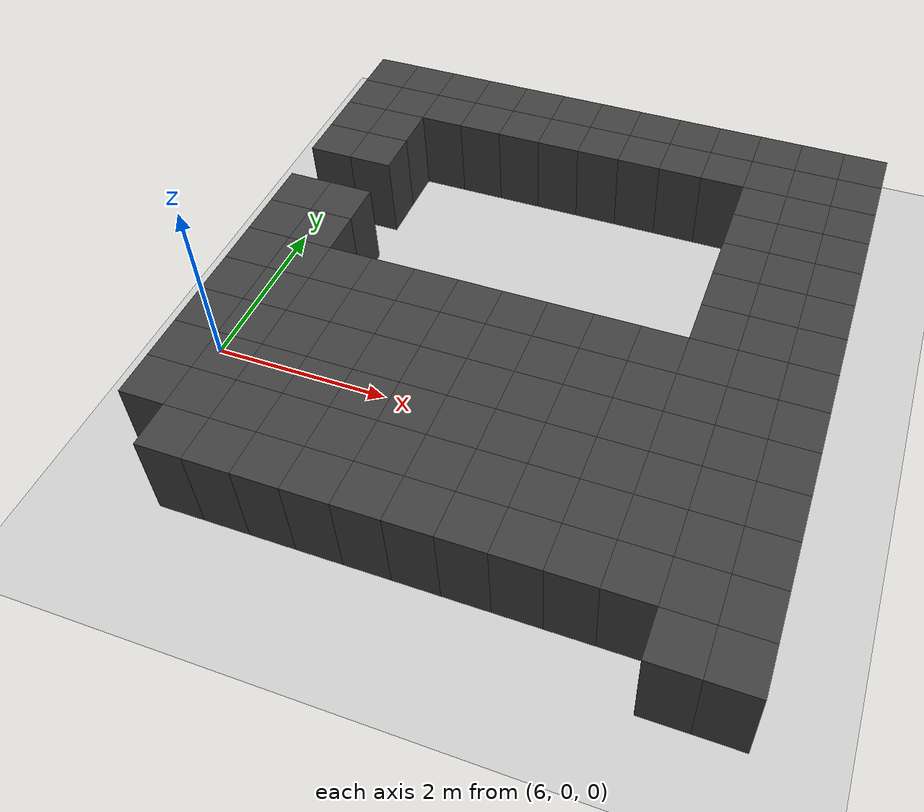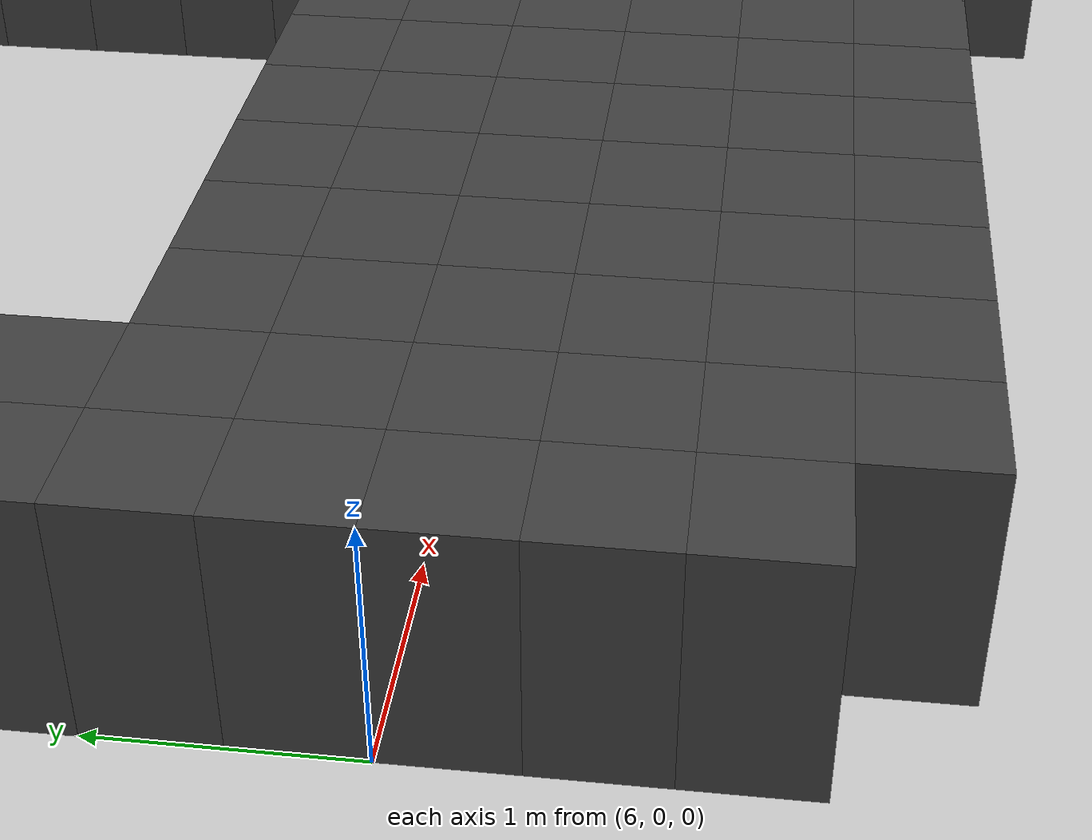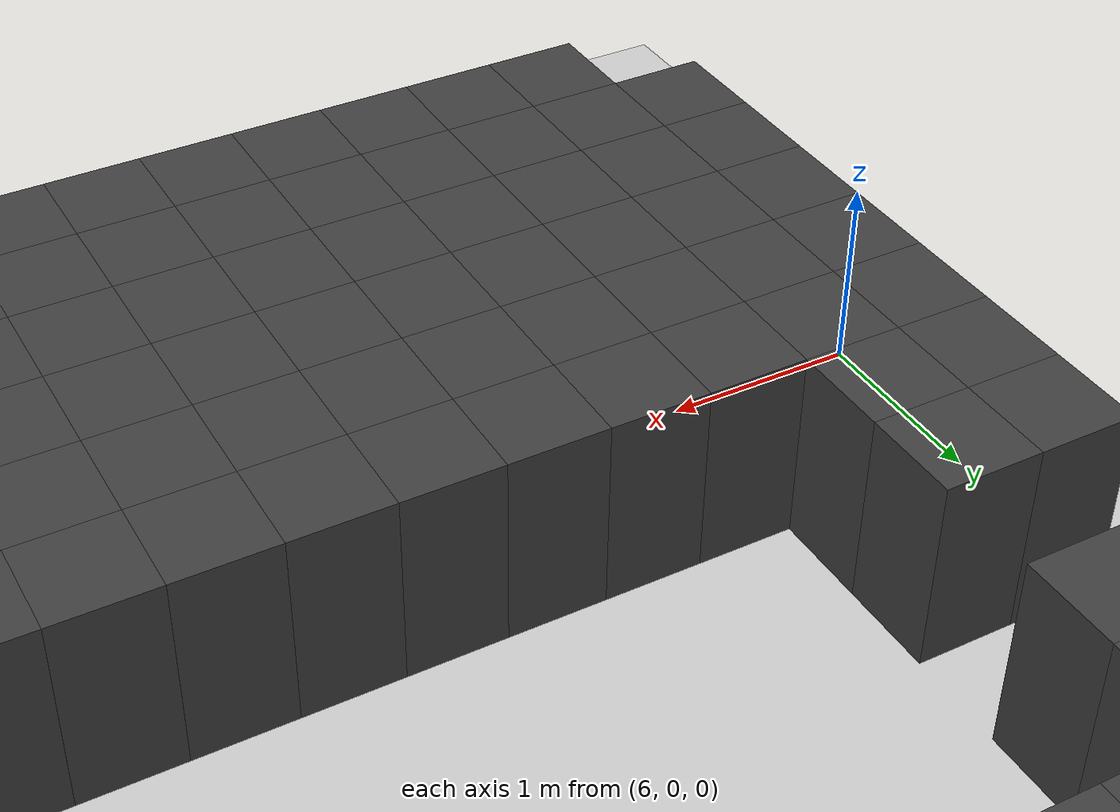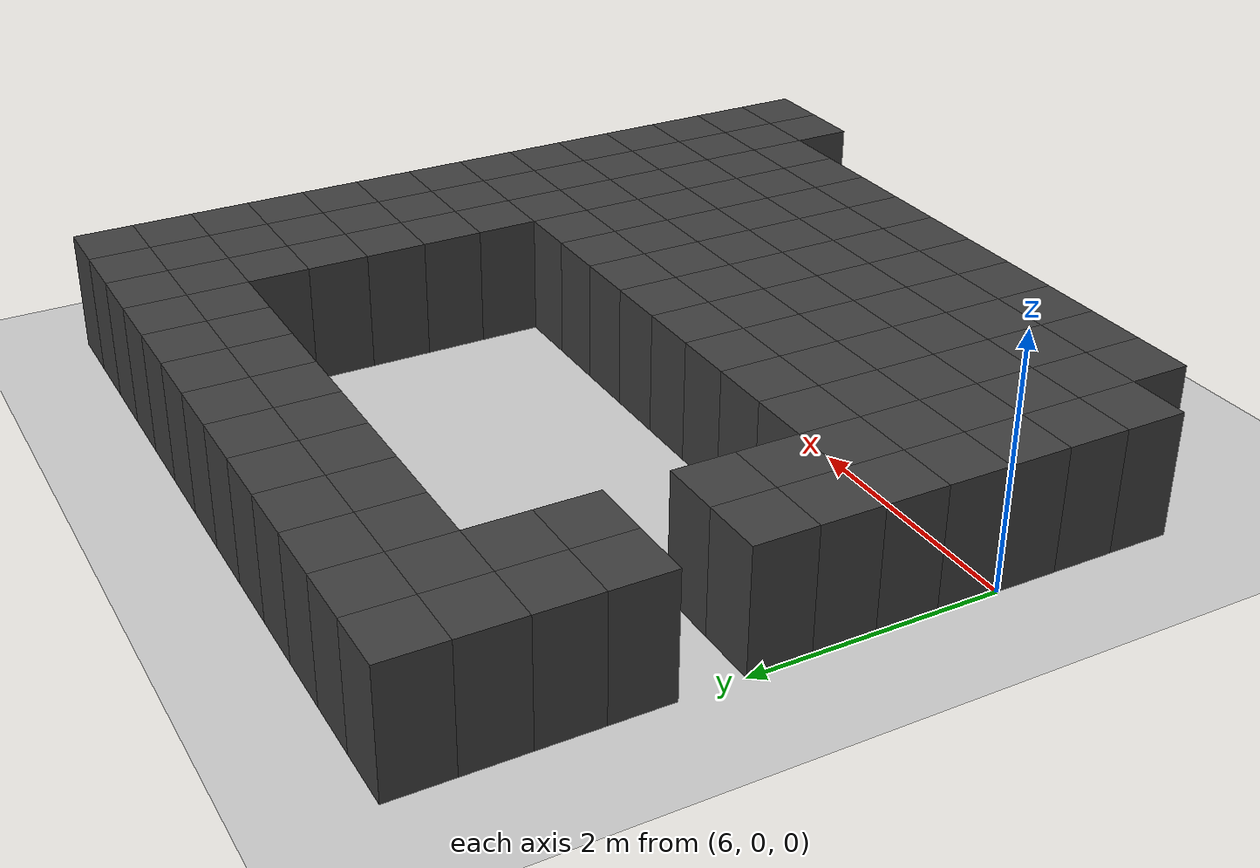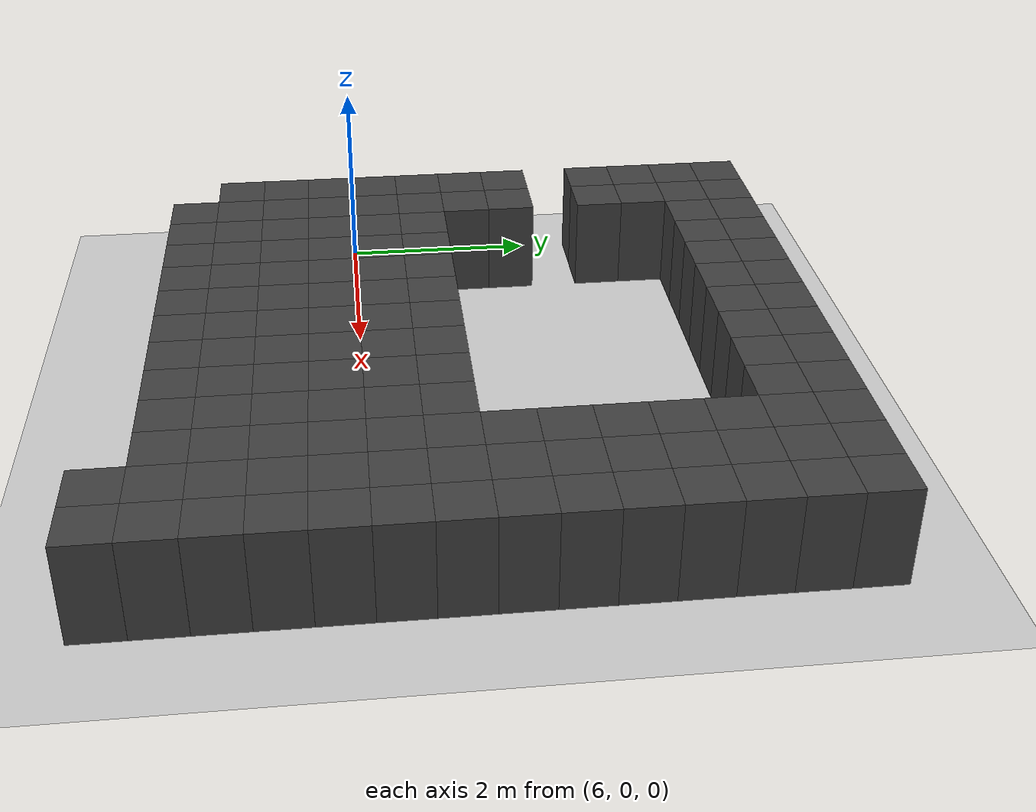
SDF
<sdf version="1.7">
 <world name="map_11515">
  <model name="ground_plane">
   <static>true</static>
   <link name="link">
    <collision name="collision">
     <geometry><plane><normal>0 0 1</normal><size>200 200</size></plane></geometry>
    </collision>
    <visual name="visual">
     <geometry><plane><normal>0 0 1</normal><size>200 200</size></plane></geometry>
     <material><ambient>0.8 0.8 0.8 1</ambient><diffuse>0.8 0.8 0.8 1</diffuse></material>
    </visual>
   </link>
  </model>
  <model name="maze_environment">
   <static>true</static>
   <link name="wall_710">
    <pose>6.250 4.250 0.500 0 0 0</pose>
    <collision name="col"><geometry><box><size>0.5 0.5 1.0</size></box></geometry></collision>
    <visual name="vis">
     <geometry><box><size>0.5 0.5 1.0</size></box></geometry>
     <material><ambient>0.15 0.15 0.15 1</ambient><diffuse>0.25 0.25 0.25 1</diffuse></material>
    </visual>
   </link>
   <link name="wall_711">
    <pose>6.750 4.250 0.500 0 0 0</pose>
    <collision name="col"><geometry><box><size>0.5 0.5 1.0</size></box></geometry></collision>
    <visual name="vis">
     <geometry><box><size>0.5 0.5 1.0</size></box></geometry>
     <material><ambient>0.15 0.15 0.15 1</ambient><diffuse>0.25 0.25 0.25 1</diffuse></material>
    </visual>
   </link>
   <link name="wall_712">
    <pose>7.250 4.250 0.500 0 0 0</pose>
    <collision name="col"><geometry><box><size>0.5 0.5 1.0</size></box></geometry></collision>
    <visual name="vis">
     <geometry><box><size>0.5 0.5 1.0</size></box></geometry>
     <material><ambient>0.15 0.15 0.15 1</ambient><diffuse>0.25 0.25 0.25 1</diffuse></material>
    </visual>
   </link>
   <link name="wall_713">
    <pose>7.750 4.250 0.500 0 0 0</pose>
    <collision name="col"><geometry><box><size>0.5 0.5 1.0</size></box></geometry></collision>
    <visual name="vis">
     <geometry><box><size>0.5 0.5 1.0</size></box></geometry>
     <material><ambient>0.15 0.15 0.15 1</ambient><diffuse>0.25 0.25 0.25 1</diffuse></material>
    </visual>
   </link>
   <link name="wall_714">
    <pose>8.250 4.250 0.500 0 0 0</pose>
    <collision name="col"><geometry><box><size>0.5 0.5 1.0</size></box></geometry></collision>
    <visual name="vis">
     <geometry><box><size>0.5 0.5 1.0</size></box></geometry>
     <material><ambient>0.15 0.15 0.15 1</ambient><diffuse>0.25 0.25 0.25 1</diffuse></material>
    </visual>
   </link>
   <link name="wall_715">
    <pose>8.750 4.250 0.500 0 0 0</pose>
    <collision name="col"><geometry><box><size>0.5 0.5 1.0</size></box></geometry></collision>
    <visual name="vis">
     <geometry><box><size>0.5 0.5 1.0</size></box></geometry>
     <material><ambient>0.15 0.15 0.15 1</ambient><diffuse>0.25 0.25 0.25 1</diffuse></material>
    </visual>
   </link>
   <link name="wall_716">
    <pose>9.250 4.250 0.500 0 0 0</pose>
    <collision name="col"><geometry><box><size>0.5 0.5 1.0</size></box></geometry></collision>
    <visual name="vis">
     <geometry><box><size>0.5 0.5 1.0</size></box></geometry>
     <material><ambient>0.15 0.15 0.15 1</ambient><diffuse>0.25 0.25 0.25 1</diffuse></material>
    </visual>
   </link>
   <link name="wall_717">
    <pose>9.750 4.250 0.500 0 0 0</pose>
    <collision name="col"><geometry><box><size>0.5 0.5 1.0</size></box></geometry></collision>
    <visual name="vis">
     <geometry><box><size>0.5 0.5 1.0</size></box></geometry>
     <material><ambient>0.15 0.15 0.15 1</ambient><diffuse>0.25 0.25 0.25 1</diffuse></material>
    </visual>
   </link>
   <link name="wall_718">
    <pose>10.250 4.250 0.500 0 0 0</pose>
    <collision name="col"><geometry><box><size>0.5 0.5 1.0</size></box></geometry></collision>
    <visual name="vis">
     <geometry><box><size>0.5 0.5 1.0</size></box></geometry>
     <material><ambient>0.15 0.15 0.15 1</ambient><diffuse>0.25 0.25 0.25 1</diffuse></material>
    </visual>
   </link>
   <link name="wall_719">
    <pose>10.750 4.250 0.500 0 0 0</pose>
    <collision name="col"><geometry><box><size>0.5 0.5 1.0</size></box></geometry></collision>
    <visual name="vis">
     <geometry><box><size>0.5 0.5 1.0</size></box></geometry>
     <material><ambient>0.15 0.15 0.15 1</ambient><diffuse>0.25 0.25 0.25 1</diffuse></material>
    </visual>
   </link>
   <link name="wall_720">
    <pose>11.250 4.250 0.500 0 0 0</pose>
    <collision name="col"><geometry><box><size>0.5 0.5 1.0</size></box></geometry></collision>
    <visual name="vis">
     <geometry><box><size>0.5 0.5 1.0</size></box></geometry>
     <material><ambient>0.15 0.15 0.15 1</ambient><diffuse>0.25 0.25 0.25 1</diffuse></material>
    </visual>
   </link>
   <link name="wall_721">
    <pose>11.750 4.250 0.500 0 0 0</pose>
    <collision name="col"><geometry><box><size>0.5 0.5 1.0</size></box></geometry></collision>
    <visual name="vis">
     <geometry><box><size>0.5 0.5 1.0</size></box></geometry>
     <material><ambient>0.15 0.15 0.15 1</ambient><diffuse>0.25 0.25 0.25 1</diffuse></material>
    </visual>
   </link>
   <link name="wall_722">
    <pose>12.250 4.250 0.500 0 0 0</pose>
    <collision name="col"><geometry><box><size>0.5 0.5 1.0</size></box></geometry></collision>
    <visual name="vis">
     <geometry><box><size>0.5 0.5 1.0</size></box></geometry>
     <material><ambient>0.15 0.15 0.15 1</ambient><diffuse>0.25 0.25 0.25 1</diffuse></material>
    </visual>
   </link>
   <link name="wall_752">
    <pose>6.250 3.750 0.500 0 0 0</pose>
    <collision name="col"><geometry><box><size>0.5 0.5 1.0</size></box></geometry></collision>
    <visual name="vis">
     <geometry><box><size>0.5 0.5 1.0</size></box></geometry>
     <material><ambient>0.15 0.15 0.15 1</ambient><diffuse>0.25 0.25 0.25 1</diffuse></material>
    </visual>
   </link>
   <link name="wall_753">
    <pose>6.750 3.750 0.500 0 0 0</pose>
    <collision name="col"><geometry><box><size>0.5 0.5 1.0</size></box></geometry></collision>
    <visual name="vis">
     <geometry><box><size>0.5 0.5 1.0</size></box></geometry>
     <material><ambient>0.15 0.15 0.15 1</ambient><diffuse>0.25 0.25 0.25 1</diffuse></material>
    </visual>
   </link>
   <link name="wall_754">
    <pose>7.250 3.750 0.500 0 0 0</pose>
    <collision name="col"><geometry><box><size>0.5 0.5 1.0</size></box></geometry></collision>
    <visual name="vis">
     <geometry><box><size>0.5 0.5 1.0</size></box></geometry>
     <material><ambient>0.15 0.15 0.15 1</ambient><diffuse>0.25 0.25 0.25 1</diffuse></material>
    </visual>
   </link>
   <link name="wall_755">
    <pose>7.750 3.750 0.500 0 0 0</pose>
    <collision name="col"><geometry><box><size>0.5 0.5 1.0</size></box></geometry></collision>
    <visual name="vis">
     <geometry><box><size>0.5 0.5 1.0</size></box></geometry>
     <material><ambient>0.15 0.15 0.15 1</ambient><diffuse>0.25 0.25 0.25 1</diffuse></material>
    </visual>
   </link>
   <link name="wall_756">
    <pose>8.250 3.750 0.500 0 0 0</pose>
    <collision name="col"><geometry><box><size>0.5 0.5 1.0</size></box></geometry></collision>
    <visual name="vis">
     <geometry><box><size>0.5 0.5 1.0</size></box></geometry>
     <material><ambient>0.15 0.15 0.15 1</ambient><diffuse>0.25 0.25 0.25 1</diffuse></material>
    </visual>
   </link>
   <link name="wall_757">
    <pose>8.750 3.750 0.500 0 0 0</pose>
    <collision name="col"><geometry><box><size>0.5 0.5 1.0</size></box></geometry></collision>
    <visual name="vis">
     <geometry><box><size>0.5 0.5 1.0</size></box></geometry>
     <material><ambient>0.15 0.15 0.15 1</ambient><diffuse>0.25 0.25 0.25 1</diffuse></material>
    </visual>
   </link>
   <link name="wall_758">
    <pose>9.250 3.750 0.500 0 0 0</pose>
    <collision name="col"><geometry><box><size>0.5 0.5 1.0</size></box></geometry></collision>
    <visual name="vis">
     <geometry><box><size>0.5 0.5 1.0</size></box></geometry>
     <material><ambient>0.15 0.15 0.15 1</ambient><diffuse>0.25 0.25 0.25 1</diffuse></material>
    </visual>
   </link>
   <link name="wall_759">
    <pose>9.750 3.750 0.500 0 0 0</pose>
    <collision name="col"><geometry><box><size>0.5 0.5 1.0</size></box></geometry></collision>
    <visual name="vis">
     <geometry><box><size>0.5 0.5 1.0</size></box></geometry>
     <material><ambient>0.15 0.15 0.15 1</ambient><diffuse>0.25 0.25 0.25 1</diffuse></material>
    </visual>
   </link>
   <link name="wall_760">
    <pose>10.250 3.750 0.500 0 0 0</pose>
    <collision name="col"><geometry><box><size>0.5 0.5 1.0</size></box></geometry></collision>
    <visual name="vis">
     <geometry><box><size>0.5 0.5 1.0</size></box></geometry>
     <material><ambient>0.15 0.15 0.15 1</ambient><diffuse>0.25 0.25 0.25 1</diffuse></material>
    </visual>
   </link>
   <link name="wall_761">
    <pose>10.750 3.750 0.500 0 0 0</pose>
    <collision name="col"><geometry><box><size>0.5 0.5 1.0</size></box></geometry></collision>
    <visual name="vis">
     <geometry><box><size>0.5 0.5 1.0</size></box></geometry>
     <material><ambient>0.15 0.15 0.15 1</ambient><diffuse>0.25 0.25 0.25 1</diffuse></material>
    </visual>
   </link>
   <link name="wall_762">
    <pose>11.250 3.750 0.500 0 0 0</pose>
    <collision name="col"><geometry><box><size>0.5 0.5 1.0</size></box></geometry></collision>
    <visual name="vis">
     <geometry><box><size>0.5 0.5 1.0</size></box></geometry>
     <material><ambient>0.15 0.15 0.15 1</ambient><diffuse>0.25 0.25 0.25 1</diffuse></material>
    </visual>
   </link>
   <link name="wall_763">
    <pose>11.750 3.750 0.500 0 0 0</pose>
    <collision name="col"><geometry><box><size>0.5 0.5 1.0</size></box></geometry></collision>
    <visual name="vis">
     <geometry><box><size>0.5 0.5 1.0</size></box></geometry>
     <material><ambient>0.15 0.15 0.15 1</ambient><diffuse>0.25 0.25 0.25 1</diffuse></material>
    </visual>
   </link>
   <link name="wall_764">
    <pose>12.250 3.750 0.500 0 0 0</pose>
    <collision name="col"><geometry><box><size>0.5 0.5 1.0</size></box></geometry></collision>
    <visual name="vis">
     <geometry><box><size>0.5 0.5 1.0</size></box></geometry>
     <material><ambient>0.15 0.15 0.15 1</ambient><diffuse>0.25 0.25 0.25 1</diffuse></material>
    </visual>
   </link>
   <link name="wall_794">
    <pose>6.250 3.250 0.500 0 0 0</pose>
    <collision name="col"><geometry><box><size>0.5 0.5 1.0</size></box></geometry></collision>
    <visual name="vis">
     <geometry><box><size>0.5 0.5 1.0</size></box></geometry>
     <material><ambient>0.15 0.15 0.15 1</ambient><diffuse>0.25 0.25 0.25 1</diffuse></material>
    </visual>
   </link>
   <link name="wall_795">
    <pose>6.750 3.250 0.500 0 0 0</pose>
    <collision name="col"><geometry><box><size>0.5 0.5 1.0</size></box></geometry></collision>
    <visual name="vis">
     <geometry><box><size>0.5 0.5 1.0</size></box></geometry>
     <material><ambient>0.15 0.15 0.15 1</ambient><diffuse>0.25 0.25 0.25 1</diffuse></material>
    </visual>
   </link>
   <link name="wall_796">
    <pose>11.250 3.250 0.500 0 0 0</pose>
    <collision name="col"><geometry><box><size>0.5 0.5 1.0</size></box></geometry></collision>
    <visual name="vis">
     <geometry><box><size>0.5 0.5 1.0</size></box></geometry>
     <material><ambient>0.15 0.15 0.15 1</ambient><diffuse>0.25 0.25 0.25 1</diffuse></material>
    </visual>
   </link>
   <link name="wall_797">
    <pose>11.750 3.250 0.500 0 0 0</pose>
    <collision name="col"><geometry><box><size>0.5 0.5 1.0</size></box></geometry></collision>
    <visual name="vis">
     <geometry><box><size>0.5 0.5 1.0</size></box></geometry>
     <material><ambient>0.15 0.15 0.15 1</ambient><diffuse>0.25 0.25 0.25 1</diffuse></material>
    </visual>
   </link>
   <link name="wall_798">
    <pose>12.250 3.250 0.500 0 0 0</pose>
    <collision name="col"><geometry><box><size>0.5 0.5 1.0</size></box></geometry></collision>
    <visual name="vis">
     <geometry><box><size>0.5 0.5 1.0</size></box></geometry>
     <material><ambient>0.15 0.15 0.15 1</ambient><diffuse>0.25 0.25 0.25 1</diffuse></material>
    </visual>
   </link>
   <link name="wall_830">
    <pose>6.250 2.750 0.500 0 0 0</pose>
    <collision name="col"><geometry><box><size>0.5 0.5 1.0</size></box></geometry></collision>
    <visual name="vis">
     <geometry><box><size>0.5 0.5 1.0</size></box></geometry>
     <material><ambient>0.15 0.15 0.15 1</ambient><diffuse>0.25 0.25 0.25 1</diffuse></material>
    </visual>
   </link>
   <link name="wall_831">
    <pose>6.750 2.750 0.500 0 0 0</pose>
    <collision name="col"><geometry><box><size>0.5 0.5 1.0</size></box></geometry></collision>
    <visual name="vis">
     <geometry><box><size>0.5 0.5 1.0</size></box></geometry>
     <material><ambient>0.15 0.15 0.15 1</ambient><diffuse>0.25 0.25 0.25 1</diffuse></material>
    </visual>
   </link>
   <link name="wall_832">
    <pose>11.250 2.750 0.500 0 0 0</pose>
    <collision name="col"><geometry><box><size>0.5 0.5 1.0</size></box></geometry></collision>
    <visual name="vis">
     <geometry><box><size>0.5 0.5 1.0</size></box></geometry>
     <material><ambient>0.15 0.15 0.15 1</ambient><diffuse>0.25 0.25 0.25 1</diffuse></material>
    </visual>
   </link>
   <link name="wall_833">
    <pose>11.750 2.750 0.500 0 0 0</pose>
    <collision name="col"><geometry><box><size>0.5 0.5 1.0</size></box></geometry></collision>
    <visual name="vis">
     <geometry><box><size>0.5 0.5 1.0</size></box></geometry>
     <material><ambient>0.15 0.15 0.15 1</ambient><diffuse>0.25 0.25 0.25 1</diffuse></material>
    </visual>
   </link>
   <link name="wall_834">
    <pose>12.250 2.750 0.500 0 0 0</pose>
    <collision name="col"><geometry><box><size>0.5 0.5 1.0</size></box></geometry></collision>
    <visual name="vis">
     <geometry><box><size>0.5 0.5 1.0</size></box></geometry>
     <material><ambient>0.15 0.15 0.15 1</ambient><diffuse>0.25 0.25 0.25 1</diffuse></material>
    </visual>
   </link>
   <link name="wall_858">
    <pose>11.250 2.250 0.500 0 0 0</pose>
    <collision name="col"><geometry><box><size>0.5 0.5 1.0</size></box></geometry></collision>
    <visual name="vis">
     <geometry><box><size>0.5 0.5 1.0</size></box></geometry>
     <material><ambient>0.15 0.15 0.15 1</ambient><diffuse>0.25 0.25 0.25 1</diffuse></material>
    </visual>
   </link>
   <link name="wall_859">
    <pose>11.750 2.250 0.500 0 0 0</pose>
    <collision name="col"><geometry><box><size>0.5 0.5 1.0</size></box></geometry></collision>
    <visual name="vis">
     <geometry><box><size>0.5 0.5 1.0</size></box></geometry>
     <material><ambient>0.15 0.15 0.15 1</ambient><diffuse>0.25 0.25 0.25 1</diffuse></material>
    </visual>
   </link>
   <link name="wall_860">
    <pose>12.250 2.250 0.500 0 0 0</pose>
    <collision name="col"><geometry><box><size>0.5 0.5 1.0</size></box></geometry></collision>
    <visual name="vis">
     <geometry><box><size>0.5 0.5 1.0</size></box></geometry>
     <material><ambient>0.15 0.15 0.15 1</ambient><diffuse>0.25 0.25 0.25 1</diffuse></material>
    </visual>
   </link>
   <link name="wall_892">
    <pose>6.250 1.750 0.500 0 0 0</pose>
    <collision name="col"><geometry><box><size>0.5 0.5 1.0</size></box></geometry></collision>
    <visual name="vis">
     <geometry><box><size>0.5 0.5 1.0</size></box></geometry>
     <material><ambient>0.15 0.15 0.15 1</ambient><diffuse>0.25 0.25 0.25 1</diffuse></material>
    </visual>
   </link>
   <link name="wall_893">
    <pose>6.750 1.750 0.500 0 0 0</pose>
    <collision name="col"><geometry><box><size>0.5 0.5 1.0</size></box></geometry></collision>
    <visual name="vis">
     <geometry><box><size>0.5 0.5 1.0</size></box></geometry>
     <material><ambient>0.15 0.15 0.15 1</ambient><diffuse>0.25 0.25 0.25 1</diffuse></material>
    </visual>
   </link>
   <link name="wall_894">
    <pose>11.250 1.750 0.500 0 0 0</pose>
    <collision name="col"><geometry><box><size>0.5 0.5 1.0</size></box></geometry></collision>
    <visual name="vis">
     <geometry><box><size>0.5 0.5 1.0</size></box></geometry>
     <material><ambient>0.15 0.15 0.15 1</ambient><diffuse>0.25 0.25 0.25 1</diffuse></material>
    </visual>
   </link>
   <link name="wall_895">
    <pose>11.750 1.750 0.500 0 0 0</pose>
    <collision name="col"><geometry><box><size>0.5 0.5 1.0</size></box></geometry></collision>
    <visual name="vis">
     <geometry><box><size>0.5 0.5 1.0</size></box></geometry>
     <material><ambient>0.15 0.15 0.15 1</ambient><diffuse>0.25 0.25 0.25 1</diffuse></material>
    </visual>
   </link>
   <link name="wall_896">
    <pose>12.250 1.750 0.500 0 0 0</pose>
    <collision name="col"><geometry><box><size>0.5 0.5 1.0</size></box></geometry></collision>
    <visual name="vis">
     <geometry><box><size>0.5 0.5 1.0</size></box></geometry>
     <material><ambient>0.15 0.15 0.15 1</ambient><diffuse>0.25 0.25 0.25 1</diffuse></material>
    </visual>
   </link>
   <link name="wall_928">
    <pose>6.250 1.250 0.500 0 0 0</pose>
    <collision name="col"><geometry><box><size>0.5 0.5 1.0</size></box></geometry></collision>
    <visual name="vis">
     <geometry><box><size>0.5 0.5 1.0</size></box></geometry>
     <material><ambient>0.15 0.15 0.15 1</ambient><diffuse>0.25 0.25 0.25 1</diffuse></material>
    </visual>
   </link>
   <link name="wall_929">
    <pose>6.750 1.250 0.500 0 0 0</pose>
    <collision name="col"><geometry><box><size>0.5 0.5 1.0</size></box></geometry></collision>
    <visual name="vis">
     <geometry><box><size>0.5 0.5 1.0</size></box></geometry>
     <material><ambient>0.15 0.15 0.15 1</ambient><diffuse>0.25 0.25 0.25 1</diffuse></material>
    </visual>
   </link>
   <link name="wall_930">
    <pose>11.250 1.250 0.500 0 0 0</pose>
    <collision name="col"><geometry><box><size>0.5 0.5 1.0</size></box></geometry></collision>
    <visual name="vis">
     <geometry><box><size>0.5 0.5 1.0</size></box></geometry>
     <material><ambient>0.15 0.15 0.15 1</ambient><diffuse>0.25 0.25 0.25 1</diffuse></material>
    </visual>
   </link>
   <link name="wall_931">
    <pose>11.750 1.250 0.500 0 0 0</pose>
    <collision name="col"><geometry><box><size>0.5 0.5 1.0</size></box></geometry></collision>
    <visual name="vis">
     <geometry><box><size>0.5 0.5 1.0</size></box></geometry>
     <material><ambient>0.15 0.15 0.15 1</ambient><diffuse>0.25 0.25 0.25 1</diffuse></material>
    </visual>
   </link>
   <link name="wall_932">
    <pose>12.250 1.250 0.500 0 0 0</pose>
    <collision name="col"><geometry><box><size>0.5 0.5 1.0</size></box></geometry></collision>
    <visual name="vis">
     <geometry><box><size>0.5 0.5 1.0</size></box></geometry>
     <material><ambient>0.15 0.15 0.15 1</ambient><diffuse>0.25 0.25 0.25 1</diffuse></material>
    </visual>
   </link>
   <link name="wall_969">
    <pose>6.250 0.750 0.500 0 0 0</pose>
    <collision name="col"><geometry><box><size>0.5 0.5 1.0</size></box></geometry></collision>
    <visual name="vis">
     <geometry><box><size>0.5 0.5 1.0</size></box></geometry>
     <material><ambient>0.15 0.15 0.15 1</ambient><diffuse>0.25 0.25 0.25 1</diffuse></material>
    </visual>
   </link>
   <link name="wall_970">
    <pose>6.750 0.750 0.500 0 0 0</pose>
    <collision name="col"><geometry><box><size>0.5 0.5 1.0</size></box></geometry></collision>
    <visual name="vis">
     <geometry><box><size>0.5 0.5 1.0</size></box></geometry>
     <material><ambient>0.15 0.15 0.15 1</ambient><diffuse>0.25 0.25 0.25 1</diffuse></material>
    </visual>
   </link>
   <link name="wall_971">
    <pose>7.250 0.750 0.500 0 0 0</pose>
    <collision name="col"><geometry><box><size>0.5 0.5 1.0</size></box></geometry></collision>
    <visual name="vis">
     <geometry><box><size>0.5 0.5 1.0</size></box></geometry>
     <material><ambient>0.15 0.15 0.15 1</ambient><diffuse>0.25 0.25 0.25 1</diffuse></material>
    </visual>
   </link>
   <link name="wall_972">
    <pose>7.750 0.750 0.500 0 0 0</pose>
    <collision name="col"><geometry><box><size>0.5 0.5 1.0</size></box></geometry></collision>
    <visual name="vis">
     <geometry><box><size>0.5 0.5 1.0</size></box></geometry>
     <material><ambient>0.15 0.15 0.15 1</ambient><diffuse>0.25 0.25 0.25 1</diffuse></material>
    </visual>
   </link>
   <link name="wall_973">
    <pose>8.250 0.750 0.500 0 0 0</pose>
    <collision name="col"><geometry><box><size>0.5 0.5 1.0</size></box></geometry></collision>
    <visual name="vis">
     <geometry><box><size>0.5 0.5 1.0</size></box></geometry>
     <material><ambient>0.15 0.15 0.15 1</ambient><diffuse>0.25 0.25 0.25 1</diffuse></material>
    </visual>
   </link>
   <link name="wall_974">
    <pose>8.750 0.750 0.500 0 0 0</pose>
    <collision name="col"><geometry><box><size>0.5 0.5 1.0</size></box></geometry></collision>
    <visual name="vis">
     <geometry><box><size>0.5 0.5 1.0</size></box></geometry>
     <material><ambient>0.15 0.15 0.15 1</ambient><diffuse>0.25 0.25 0.25 1</diffuse></material>
    </visual>
   </link>
   <link name="wall_975">
    <pose>9.250 0.750 0.500 0 0 0</pose>
    <collision name="col"><geometry><box><size>0.5 0.5 1.0</size></box></geometry></collision>
    <visual name="vis">
     <geometry><box><size>0.5 0.5 1.0</size></box></geometry>
     <material><ambient>0.15 0.15 0.15 1</ambient><diffuse>0.25 0.25 0.25 1</diffuse></material>
    </visual>
   </link>
   <link name="wall_976">
    <pose>9.750 0.750 0.500 0 0 0</pose>
    <collision name="col"><geometry><box><size>0.5 0.5 1.0</size></box></geometry></collision>
    <visual name="vis">
     <geometry><box><size>0.5 0.5 1.0</size></box></geometry>
     <material><ambient>0.15 0.15 0.15 1</ambient><diffuse>0.25 0.25 0.25 1</diffuse></material>
    </visual>
   </link>
   <link name="wall_977">
    <pose>10.250 0.750 0.500 0 0 0</pose>
    <collision name="col"><geometry><box><size>0.5 0.5 1.0</size></box></geometry></collision>
    <visual name="vis">
     <geometry><box><size>0.5 0.5 1.0</size></box></geometry>
     <material><ambient>0.15 0.15 0.15 1</ambient><diffuse>0.25 0.25 0.25 1</diffuse></material>
    </visual>
   </link>
   <link name="wall_978">
    <pose>10.750 0.750 0.500 0 0 0</pose>
    <collision name="col"><geometry><box><size>0.5 0.5 1.0</size></box></geometry></collision>
    <visual name="vis">
     <geometry><box><size>0.5 0.5 1.0</size></box></geometry>
     <material><ambient>0.15 0.15 0.15 1</ambient><diffuse>0.25 0.25 0.25 1</diffuse></material>
    </visual>
   </link>
   <link name="wall_979">
    <pose>11.250 0.750 0.500 0 0 0</pose>
    <collision name="col"><geometry><box><size>0.5 0.5 1.0</size></box></geometry></collision>
    <visual name="vis">
     <geometry><box><size>0.5 0.5 1.0</size></box></geometry>
     <material><ambient>0.15 0.15 0.15 1</ambient><diffuse>0.25 0.25 0.25 1</diffuse></material>
    </visual>
   </link>
   <link name="wall_980">
    <pose>11.750 0.750 0.500 0 0 0</pose>
    <collision name="col"><geometry><box><size>0.5 0.5 1.0</size></box></geometry></collision>
    <visual name="vis">
     <geometry><box><size>0.5 0.5 1.0</size></box></geometry>
     <material><ambient>0.15 0.15 0.15 1</ambient><diffuse>0.25 0.25 0.25 1</diffuse></material>
    </visual>
   </link>
   <link name="wall_981">
    <pose>12.250 0.750 0.500 0 0 0</pose>
    <collision name="col"><geometry><box><size>0.5 0.5 1.0</size></box></geometry></collision>
    <visual name="vis">
     <geometry><box><size>0.5 0.5 1.0</size></box></geometry>
     <material><ambient>0.15 0.15 0.15 1</ambient><diffuse>0.25 0.25 0.25 1</diffuse></material>
    </visual>
   </link>
   <link name="wall_1018">
    <pose>6.250 0.250 0.500 0 0 0</pose>
    <collision name="col"><geometry><box><size>0.5 0.5 1.0</size></box></geometry></collision>
    <visual name="vis">
     <geometry><box><size>0.5 0.5 1.0</size></box></geometry>
     <material><ambient>0.15 0.15 0.15 1</ambient><diffuse>0.25 0.25 0.25 1</diffuse></material>
    </visual>
   </link>
   <link name="wall_1019">
    <pose>6.750 0.250 0.500 0 0 0</pose>
    <collision name="col"><geometry><box><size>0.5 0.5 1.0</size></box></geometry></collision>
    <visual name="vis">
     <geometry><box><size>0.5 0.5 1.0</size></box></geometry>
     <material><ambient>0.15 0.15 0.15 1</ambient><diffuse>0.25 0.25 0.25 1</diffuse></material>
    </visual>
   </link>
   <link name="wall_1020">
    <pose>7.250 0.250 0.500 0 0 0</pose>
    <collision name="col"><geometry><box><size>0.5 0.5 1.0</size></box></geometry></collision>
    <visual name="vis">
     <geometry><box><size>0.5 0.5 1.0</size></box></geometry>
     <material><ambient>0.15 0.15 0.15 1</ambient><diffuse>0.25 0.25 0.25 1</diffuse></material>
    </visual>
   </link>
   <link name="wall_1021">
    <pose>7.750 0.250 0.500 0 0 0</pose>
    <collision name="col"><geometry><box><size>0.5 0.5 1.0</size></box></geometry></collision>
    <visual name="vis">
     <geometry><box><size>0.5 0.5 1.0</size></box></geometry>
     <material><ambient>0.15 0.15 0.15 1</ambient><diffuse>0.25 0.25 0.25 1</diffuse></material>
    </visual>
   </link>
   <link name="wall_1022">
    <pose>8.250 0.250 0.500 0 0 0</pose>
    <collision name="col"><geometry><box><size>0.5 0.5 1.0</size></box></geometry></collision>
    <visual name="vis">
     <geometry><box><size>0.5 0.5 1.0</size></box></geometry>
     <material><ambient>0.15 0.15 0.15 1</ambient><diffuse>0.25 0.25 0.25 1</diffuse></material>
    </visual>
   </link>
   <link name="wall_1023">
    <pose>8.750 0.250 0.500 0 0 0</pose>
    <collision name="col"><geometry><box><size>0.5 0.5 1.0</size></box></geometry></collision>
    <visual name="vis">
     <geometry><box><size>0.5 0.5 1.0</size></box></geometry>
     <material><ambient>0.15 0.15 0.15 1</ambient><diffuse>0.25 0.25 0.25 1</diffuse></material>
    </visual>
   </link>
   <link name="wall_1024">
    <pose>9.250 0.250 0.500 0 0 0</pose>
    <collision name="col"><geometry><box><size>0.5 0.5 1.0</size></box></geometry></collision>
    <visual name="vis">
     <geometry><box><size>0.5 0.5 1.0</size></box></geometry>
     <material><ambient>0.15 0.15 0.15 1</ambient><diffuse>0.25 0.25 0.25 1</diffuse></material>
    </visual>
   </link>
   <link name="wall_1025">
    <pose>9.750 0.250 0.500 0 0 0</pose>
    <collision name="col"><geometry><box><size>0.5 0.5 1.0</size></box></geometry></collision>
    <visual name="vis">
     <geometry><box><size>0.5 0.5 1.0</size></box></geometry>
     <material><ambient>0.15 0.15 0.15 1</ambient><diffuse>0.25 0.25 0.25 1</diffuse></material>
    </visual>
   </link>
   <link name="wall_1026">
    <pose>10.250 0.250 0.500 0 0 0</pose>
    <collision name="col"><geometry><box><size>0.5 0.5 1.0</size></box></geometry></collision>
    <visual name="vis">
     <geometry><box><size>0.5 0.5 1.0</size></box></geometry>
     <material><ambient>0.15 0.15 0.15 1</ambient><diffuse>0.25 0.25 0.25 1</diffuse></material>
    </visual>
   </link>
   <link name="wall_1027">
    <pose>10.750 0.250 0.500 0 0 0</pose>
    <collision name="col"><geometry><box><size>0.5 0.5 1.0</size></box></geometry></collision>
    <visual name="vis">
     <geometry><box><size>0.5 0.5 1.0</size></box></geometry>
     <material><ambient>0.15 0.15 0.15 1</ambient><diffuse>0.25 0.25 0.25 1</diffuse></material>
    </visual>
   </link>
   <link name="wall_1028">
    <pose>11.250 0.250 0.500 0 0 0</pose>
    <collision name="col"><geometry><box><size>0.5 0.5 1.0</size></box></geometry></collision>
    <visual name="vis">
     <geometry><box><size>0.5 0.5 1.0</size></box></geometry>
     <material><ambient>0.15 0.15 0.15 1</ambient><diffuse>0.25 0.25 0.25 1</diffuse></material>
    </visual>
   </link>
   <link name="wall_1029">
    <pose>11.750 0.250 0.500 0 0 0</pose>
    <collision name="col"><geometry><box><size>0.5 0.5 1.0</size></box></geometry></collision>
    <visual name="vis">
     <geometry><box><size>0.5 0.5 1.0</size></box></geometry>
     <material><ambient>0.15 0.15 0.15 1</ambient><diffuse>0.25 0.25 0.25 1</diffuse></material>
    </visual>
   </link>
   <link name="wall_1030">
    <pose>12.250 0.250 0.500 0 0 0</pose>
    <collision name="col"><geometry><box><size>0.5 0.5 1.0</size></box></geometry></collision>
    <visual name="vis">
     <geometry><box><size>0.5 0.5 1.0</size></box></geometry>
     <material><ambient>0.15 0.15 0.15 1</ambient><diffuse>0.25 0.25 0.25 1</diffuse></material>
    </visual>
   </link>
   <link name="wall_1067">
    <pose>6.250 -0.250 0.500 0 0 0</pose>
    <collision name="col"><geometry><box><size>0.5 0.5 1.0</size></box></geometry></collision>
    <visual name="vis">
     <geometry><box><size>0.5 0.5 1.0</size></box></geometry>
     <material><ambient>0.15 0.15 0.15 1</ambient><diffuse>0.25 0.25 0.25 1</diffuse></material>
    </visual>
   </link>
   <link name="wall_1068">
    <pose>6.750 -0.250 0.500 0 0 0</pose>
    <collision name="col"><geometry><box><size>0.5 0.5 1.0</size></box></geometry></collision>
    <visual name="vis">
     <geometry><box><size>0.5 0.5 1.0</size></box></geometry>
     <material><ambient>0.15 0.15 0.15 1</ambient><diffuse>0.25 0.25 0.25 1</diffuse></material>
    </visual>
   </link>
   <link name="wall_1069">
    <pose>7.250 -0.250 0.500 0 0 0</pose>
    <collision name="col"><geometry><box><size>0.5 0.5 1.0</size></box></geometry></collision>
    <visual name="vis">
     <geometry><box><size>0.5 0.5 1.0</size></box></geometry>
     <material><ambient>0.15 0.15 0.15 1</ambient><diffuse>0.25 0.25 0.25 1</diffuse></material>
    </visual>
   </link>
   <link name="wall_1070">
    <pose>7.750 -0.250 0.500 0 0 0</pose>
    <collision name="col"><geometry><box><size>0.5 0.5 1.0</size></box></geometry></collision>
    <visual name="vis">
     <geometry><box><size>0.5 0.5 1.0</size></box></geometry>
     <material><ambient>0.15 0.15 0.15 1</ambient><diffuse>0.25 0.25 0.25 1</diffuse></material>
    </visual>
   </link>
   <link name="wall_1071">
    <pose>8.250 -0.250 0.500 0 0 0</pose>
    <collision name="col"><geometry><box><size>0.5 0.5 1.0</size></box></geometry></collision>
    <visual name="vis">
     <geometry><box><size>0.5 0.5 1.0</size></box></geometry>
     <material><ambient>0.15 0.15 0.15 1</ambient><diffuse>0.25 0.25 0.25 1</diffuse></material>
    </visual>
   </link>
   <link name="wall_1072">
    <pose>8.750 -0.250 0.500 0 0 0</pose>
    <collision name="col"><geometry><box><size>0.5 0.5 1.0</size></box></geometry></collision>
    <visual name="vis">
     <geometry><box><size>0.5 0.5 1.0</size></box></geometry>
     <material><ambient>0.15 0.15 0.15 1</ambient><diffuse>0.25 0.25 0.25 1</diffuse></material>
    </visual>
   </link>
   <link name="wall_1073">
    <pose>9.250 -0.250 0.500 0 0 0</pose>
    <collision name="col"><geometry><box><size>0.5 0.5 1.0</size></box></geometry></collision>
    <visual name="vis">
     <geometry><box><size>0.5 0.5 1.0</size></box></geometry>
     <material><ambient>0.15 0.15 0.15 1</ambient><diffuse>0.25 0.25 0.25 1</diffuse></material>
    </visual>
   </link>
   <link name="wall_1074">
    <pose>9.750 -0.250 0.500 0 0 0</pose>
    <collision name="col"><geometry><box><size>0.5 0.5 1.0</size></box></geometry></collision>
    <visual name="vis">
     <geometry><box><size>0.5 0.5 1.0</size></box></geometry>
     <material><ambient>0.15 0.15 0.15 1</ambient><diffuse>0.25 0.25 0.25 1</diffuse></material>
    </visual>
   </link>
   <link name="wall_1075">
    <pose>10.250 -0.250 0.500 0 0 0</pose>
    <collision name="col"><geometry><box><size>0.5 0.5 1.0</size></box></geometry></collision>
    <visual name="vis">
     <geometry><box><size>0.5 0.5 1.0</size></box></geometry>
     <material><ambient>0.15 0.15 0.15 1</ambient><diffuse>0.25 0.25 0.25 1</diffuse></material>
    </visual>
   </link>
   <link name="wall_1076">
    <pose>10.750 -0.250 0.500 0 0 0</pose>
    <collision name="col"><geometry><box><size>0.5 0.5 1.0</size></box></geometry></collision>
    <visual name="vis">
     <geometry><box><size>0.5 0.5 1.0</size></box></geometry>
     <material><ambient>0.15 0.15 0.15 1</ambient><diffuse>0.25 0.25 0.25 1</diffuse></material>
    </visual>
   </link>
   <link name="wall_1077">
    <pose>11.250 -0.250 0.500 0 0 0</pose>
    <collision name="col"><geometry><box><size>0.5 0.5 1.0</size></box></geometry></collision>
    <visual name="vis">
     <geometry><box><size>0.5 0.5 1.0</size></box></geometry>
     <material><ambient>0.15 0.15 0.15 1</ambient><diffuse>0.25 0.25 0.25 1</diffuse></material>
    </visual>
   </link>
   <link name="wall_1078">
    <pose>11.750 -0.250 0.500 0 0 0</pose>
    <collision name="col"><geometry><box><size>0.5 0.5 1.0</size></box></geometry></collision>
    <visual name="vis">
     <geometry><box><size>0.5 0.5 1.0</size></box></geometry>
     <material><ambient>0.15 0.15 0.15 1</ambient><diffuse>0.25 0.25 0.25 1</diffuse></material>
    </visual>
   </link>
   <link name="wall_1079">
    <pose>12.250 -0.250 0.500 0 0 0</pose>
    <collision name="col"><geometry><box><size>0.5 0.5 1.0</size></box></geometry></collision>
    <visual name="vis">
     <geometry><box><size>0.5 0.5 1.0</size></box></geometry>
     <material><ambient>0.15 0.15 0.15 1</ambient><diffuse>0.25 0.25 0.25 1</diffuse></material>
    </visual>
   </link>
   <link name="wall_1116">
    <pose>6.250 -0.750 0.500 0 0 0</pose>
    <collision name="col"><geometry><box><size>0.5 0.5 1.0</size></box></geometry></collision>
    <visual name="vis">
     <geometry><box><size>0.5 0.5 1.0</size></box></geometry>
     <material><ambient>0.15 0.15 0.15 1</ambient><diffuse>0.25 0.25 0.25 1</diffuse></material>
    </visual>
   </link>
   <link name="wall_1117">
    <pose>6.750 -0.750 0.500 0 0 0</pose>
    <collision name="col"><geometry><box><size>0.5 0.5 1.0</size></box></geometry></collision>
    <visual name="vis">
     <geometry><box><size>0.5 0.5 1.0</size></box></geometry>
     <material><ambient>0.15 0.15 0.15 1</ambient><diffuse>0.25 0.25 0.25 1</diffuse></material>
    </visual>
   </link>
   <link name="wall_1118">
    <pose>7.250 -0.750 0.500 0 0 0</pose>
    <collision name="col"><geometry><box><size>0.5 0.5 1.0</size></box></geometry></collision>
    <visual name="vis">
     <geometry><box><size>0.5 0.5 1.0</size></box></geometry>
     <material><ambient>0.15 0.15 0.15 1</ambient><diffuse>0.25 0.25 0.25 1</diffuse></material>
    </visual>
   </link>
   <link name="wall_1119">
    <pose>7.750 -0.750 0.500 0 0 0</pose>
    <collision name="col"><geometry><box><size>0.5 0.5 1.0</size></box></geometry></collision>
    <visual name="vis">
     <geometry><box><size>0.5 0.5 1.0</size></box></geometry>
     <material><ambient>0.15 0.15 0.15 1</ambient><diffuse>0.25 0.25 0.25 1</diffuse></material>
    </visual>
   </link>
   <link name="wall_1120">
    <pose>8.250 -0.750 0.500 0 0 0</pose>
    <collision name="col"><geometry><box><size>0.5 0.5 1.0</size></box></geometry></collision>
    <visual name="vis">
     <geometry><box><size>0.5 0.5 1.0</size></box></geometry>
     <material><ambient>0.15 0.15 0.15 1</ambient><diffuse>0.25 0.25 0.25 1</diffuse></material>
    </visual>
   </link>
   <link name="wall_1121">
    <pose>8.750 -0.750 0.500 0 0 0</pose>
    <collision name="col"><geometry><box><size>0.5 0.5 1.0</size></box></geometry></collision>
    <visual name="vis">
     <geometry><box><size>0.5 0.5 1.0</size></box></geometry>
     <material><ambient>0.15 0.15 0.15 1</ambient><diffuse>0.25 0.25 0.25 1</diffuse></material>
    </visual>
   </link>
   <link name="wall_1122">
    <pose>9.250 -0.750 0.500 0 0 0</pose>
    <collision name="col"><geometry><box><size>0.5 0.5 1.0</size></box></geometry></collision>
    <visual name="vis">
     <geometry><box><size>0.5 0.5 1.0</size></box></geometry>
     <material><ambient>0.15 0.15 0.15 1</ambient><diffuse>0.25 0.25 0.25 1</diffuse></material>
    </visual>
   </link>
   <link name="wall_1123">
    <pose>9.750 -0.750 0.500 0 0 0</pose>
    <collision name="col"><geometry><box><size>0.5 0.5 1.0</size></box></geometry></collision>
    <visual name="vis">
     <geometry><box><size>0.5 0.5 1.0</size></box></geometry>
     <material><ambient>0.15 0.15 0.15 1</ambient><diffuse>0.25 0.25 0.25 1</diffuse></material>
    </visual>
   </link>
   <link name="wall_1124">
    <pose>10.250 -0.750 0.500 0 0 0</pose>
    <collision name="col"><geometry><box><size>0.5 0.5 1.0</size></box></geometry></collision>
    <visual name="vis">
     <geometry><box><size>0.5 0.5 1.0</size></box></geometry>
     <material><ambient>0.15 0.15 0.15 1</ambient><diffuse>0.25 0.25 0.25 1</diffuse></material>
    </visual>
   </link>
   <link name="wall_1125">
    <pose>10.750 -0.750 0.500 0 0 0</pose>
    <collision name="col"><geometry><box><size>0.5 0.5 1.0</size></box></geometry></collision>
    <visual name="vis">
     <geometry><box><size>0.5 0.5 1.0</size></box></geometry>
     <material><ambient>0.15 0.15 0.15 1</ambient><diffuse>0.25 0.25 0.25 1</diffuse></material>
    </visual>
   </link>
   <link name="wall_1126">
    <pose>11.250 -0.750 0.500 0 0 0</pose>
    <collision name="col"><geometry><box><size>0.5 0.5 1.0</size></box></geometry></collision>
    <visual name="vis">
     <geometry><box><size>0.5 0.5 1.0</size></box></geometry>
     <material><ambient>0.15 0.15 0.15 1</ambient><diffuse>0.25 0.25 0.25 1</diffuse></material>
    </visual>
   </link>
   <link name="wall_1127">
    <pose>11.750 -0.750 0.500 0 0 0</pose>
    <collision name="col"><geometry><box><size>0.5 0.5 1.0</size></box></geometry></collision>
    <visual name="vis">
     <geometry><box><size>0.5 0.5 1.0</size></box></geometry>
     <material><ambient>0.15 0.15 0.15 1</ambient><diffuse>0.25 0.25 0.25 1</diffuse></material>
    </visual>
   </link>
   <link name="wall_1128">
    <pose>12.250 -0.750 0.500 0 0 0</pose>
    <collision name="col"><geometry><box><size>0.5 0.5 1.0</size></box></geometry></collision>
    <visual name="vis">
     <geometry><box><size>0.5 0.5 1.0</size></box></geometry>
     <material><ambient>0.15 0.15 0.15 1</ambient><diffuse>0.25 0.25 0.25 1</diffuse></material>
    </visual>
   </link>
   <link name="wall_1165">
    <pose>6.250 -1.250 0.500 0 0 0</pose>
    <collision name="col"><geometry><box><size>0.5 0.5 1.0</size></box></geometry></collision>
    <visual name="vis">
     <geometry><box><size>0.5 0.5 1.0</size></box></geometry>
     <material><ambient>0.15 0.15 0.15 1</ambient><diffuse>0.25 0.25 0.25 1</diffuse></material>
    </visual>
   </link>
   <link name="wall_1166">
    <pose>6.750 -1.250 0.500 0 0 0</pose>
    <collision name="col"><geometry><box><size>0.5 0.5 1.0</size></box></geometry></collision>
    <visual name="vis">
     <geometry><box><size>0.5 0.5 1.0</size></box></geometry>
     <material><ambient>0.15 0.15 0.15 1</ambient><diffuse>0.25 0.25 0.25 1</diffuse></material>
    </visual>
   </link>
   <link name="wall_1167">
    <pose>7.250 -1.250 0.500 0 0 0</pose>
    <collision name="col"><geometry><box><size>0.5 0.5 1.0</size></box></geometry></collision>
    <visual name="vis">
     <geometry><box><size>0.5 0.5 1.0</size></box></geometry>
     <material><ambient>0.15 0.15 0.15 1</ambient><diffuse>0.25 0.25 0.25 1</diffuse></material>
    </visual>
   </link>
   <link name="wall_1168">
    <pose>7.750 -1.250 0.500 0 0 0</pose>
    <collision name="col"><geometry><box><size>0.5 0.5 1.0</size></box></geometry></collision>
    <visual name="vis">
     <geometry><box><size>0.5 0.5 1.0</size></box></geometry>
     <material><ambient>0.15 0.15 0.15 1</ambient><diffuse>0.25 0.25 0.25 1</diffuse></material>
    </visual>
   </link>
   <link name="wall_1169">
    <pose>8.250 -1.250 0.500 0 0 0</pose>
    <collision name="col"><geometry><box><size>0.5 0.5 1.0</size></box></geometry></collision>
    <visual name="vis">
     <geometry><box><size>0.5 0.5 1.0</size></box></geometry>
     <material><ambient>0.15 0.15 0.15 1</ambient><diffuse>0.25 0.25 0.25 1</diffuse></material>
    </visual>
   </link>
   <link name="wall_1170">
    <pose>8.750 -1.250 0.500 0 0 0</pose>
    <collision name="col"><geometry><box><size>0.5 0.5 1.0</size></box></geometry></collision>
    <visual name="vis">
     <geometry><box><size>0.5 0.5 1.0</size></box></geometry>
     <material><ambient>0.15 0.15 0.15 1</ambient><diffuse>0.25 0.25 0.25 1</diffuse></material>
    </visual>
   </link>
   <link name="wall_1171">
    <pose>9.250 -1.250 0.500 0 0 0</pose>
    <collision name="col"><geometry><box><size>0.5 0.5 1.0</size></box></geometry></collision>
    <visual name="vis">
     <geometry><box><size>0.5 0.5 1.0</size></box></geometry>
     <material><ambient>0.15 0.15 0.15 1</ambient><diffuse>0.25 0.25 0.25 1</diffuse></material>
    </visual>
   </link>
   <link name="wall_1172">
    <pose>9.750 -1.250 0.500 0 0 0</pose>
    <collision name="col"><geometry><box><size>0.5 0.5 1.0</size></box></geometry></collision>
    <visual name="vis">
     <geometry><box><size>0.5 0.5 1.0</size></box></geometry>
     <material><ambient>0.15 0.15 0.15 1</ambient><diffuse>0.25 0.25 0.25 1</diffuse></material>
    </visual>
   </link>
   <link name="wall_1173">
    <pose>10.250 -1.250 0.500 0 0 0</pose>
    <collision name="col"><geometry><box><size>0.5 0.5 1.0</size></box></geometry></collision>
    <visual name="vis">
     <geometry><box><size>0.5 0.5 1.0</size></box></geometry>
     <material><ambient>0.15 0.15 0.15 1</ambient><diffuse>0.25 0.25 0.25 1</diffuse></material>
    </visual>
   </link>
   <link name="wall_1174">
    <pose>10.750 -1.250 0.500 0 0 0</pose>
    <collision name="col"><geometry><box><size>0.5 0.5 1.0</size></box></geometry></collision>
    <visual name="vis">
     <geometry><box><size>0.5 0.5 1.0</size></box></geometry>
     <material><ambient>0.15 0.15 0.15 1</ambient><diffuse>0.25 0.25 0.25 1</diffuse></material>
    </visual>
   </link>
   <link name="wall_1175">
    <pose>11.250 -1.250 0.500 0 0 0</pose>
    <collision name="col"><geometry><box><size>0.5 0.5 1.0</size></box></geometry></collision>
    <visual name="vis">
     <geometry><box><size>0.5 0.5 1.0</size></box></geometry>
     <material><ambient>0.15 0.15 0.15 1</ambient><diffuse>0.25 0.25 0.25 1</diffuse></material>
    </visual>
   </link>
   <link name="wall_1176">
    <pose>11.750 -1.250 0.500 0 0 0</pose>
    <collision name="col"><geometry><box><size>0.5 0.5 1.0</size></box></geometry></collision>
    <visual name="vis">
     <geometry><box><size>0.5 0.5 1.0</size></box></geometry>
     <material><ambient>0.15 0.15 0.15 1</ambient><diffuse>0.25 0.25 0.25 1</diffuse></material>
    </visual>
   </link>
   <link name="wall_1177">
    <pose>12.250 -1.250 0.500 0 0 0</pose>
    <collision name="col"><geometry><box><size>0.5 0.5 1.0</size></box></geometry></collision>
    <visual name="vis">
     <geometry><box><size>0.5 0.5 1.0</size></box></geometry>
     <material><ambient>0.15 0.15 0.15 1</ambient><diffuse>0.25 0.25 0.25 1</diffuse></material>
    </visual>
   </link>
   <link name="wall_1215">
    <pose>6.750 -1.750 0.500 0 0 0</pose>
    <collision name="col"><geometry><box><size>0.5 0.5 1.0</size></box></geometry></collision>
    <visual name="vis">
     <geometry><box><size>0.5 0.5 1.0</size></box></geometry>
     <material><ambient>0.15 0.15 0.15 1</ambient><diffuse>0.25 0.25 0.25 1</diffuse></material>
    </visual>
   </link>
   <link name="wall_1216">
    <pose>7.250 -1.750 0.500 0 0 0</pose>
    <collision name="col"><geometry><box><size>0.5 0.5 1.0</size></box></geometry></collision>
    <visual name="vis">
     <geometry><box><size>0.5 0.5 1.0</size></box></geometry>
     <material><ambient>0.15 0.15 0.15 1</ambient><diffuse>0.25 0.25 0.25 1</diffuse></material>
    </visual>
   </link>
   <link name="wall_1217">
    <pose>7.750 -1.750 0.500 0 0 0</pose>
    <collision name="col"><geometry><box><size>0.5 0.5 1.0</size></box></geometry></collision>
    <visual name="vis">
     <geometry><box><size>0.5 0.5 1.0</size></box></geometry>
     <material><ambient>0.15 0.15 0.15 1</ambient><diffuse>0.25 0.25 0.25 1</diffuse></material>
    </visual>
   </link>
   <link name="wall_1218">
    <pose>8.250 -1.750 0.500 0 0 0</pose>
    <collision name="col"><geometry><box><size>0.5 0.5 1.0</size></box></geometry></collision>
    <visual name="vis">
     <geometry><box><size>0.5 0.5 1.0</size></box></geometry>
     <material><ambient>0.15 0.15 0.15 1</ambient><diffuse>0.25 0.25 0.25 1</diffuse></material>
    </visual>
   </link>
   <link name="wall_1219">
    <pose>8.750 -1.750 0.500 0 0 0</pose>
    <collision name="col"><geometry><box><size>0.5 0.5 1.0</size></box></geometry></collision>
    <visual name="vis">
     <geometry><box><size>0.5 0.5 1.0</size></box></geometry>
     <material><ambient>0.15 0.15 0.15 1</ambient><diffuse>0.25 0.25 0.25 1</diffuse></material>
    </visual>
   </link>
   <link name="wall_1220">
    <pose>9.250 -1.750 0.500 0 0 0</pose>
    <collision name="col"><geometry><box><size>0.5 0.5 1.0</size></box></geometry></collision>
    <visual name="vis">
     <geometry><box><size>0.5 0.5 1.0</size></box></geometry>
     <material><ambient>0.15 0.15 0.15 1</ambient><diffuse>0.25 0.25 0.25 1</diffuse></material>
    </visual>
   </link>
   <link name="wall_1221">
    <pose>9.750 -1.750 0.500 0 0 0</pose>
    <collision name="col"><geometry><box><size>0.5 0.5 1.0</size></box></geometry></collision>
    <visual name="vis">
     <geometry><box><size>0.5 0.5 1.0</size></box></geometry>
     <material><ambient>0.15 0.15 0.15 1</ambient><diffuse>0.25 0.25 0.25 1</diffuse></material>
    </visual>
   </link>
   <link name="wall_1222">
    <pose>10.250 -1.750 0.500 0 0 0</pose>
    <collision name="col"><geometry><box><size>0.5 0.5 1.0</size></box></geometry></collision>
    <visual name="vis">
     <geometry><box><size>0.5 0.5 1.0</size></box></geometry>
     <material><ambient>0.15 0.15 0.15 1</ambient><diffuse>0.25 0.25 0.25 1</diffuse></material>
    </visual>
   </link>
   <link name="wall_1223">
    <pose>10.750 -1.750 0.500 0 0 0</pose>
    <collision name="col"><geometry><box><size>0.5 0.5 1.0</size></box></geometry></collision>
    <visual name="vis">
     <geometry><box><size>0.5 0.5 1.0</size></box></geometry>
     <material><ambient>0.15 0.15 0.15 1</ambient><diffuse>0.25 0.25 0.25 1</diffuse></material>
    </visual>
   </link>
   <link name="wall_1224">
    <pose>11.250 -1.750 0.500 0 0 0</pose>
    <collision name="col"><geometry><box><size>0.5 0.5 1.0</size></box></geometry></collision>
    <visual name="vis">
     <geometry><box><size>0.5 0.5 1.0</size></box></geometry>
     <material><ambient>0.15 0.15 0.15 1</ambient><diffuse>0.25 0.25 0.25 1</diffuse></material>
    </visual>
   </link>
   <link name="wall_1225">
    <pose>11.750 -1.750 0.500 0 0 0</pose>
    <collision name="col"><geometry><box><size>0.5 0.5 1.0</size></box></geometry></collision>
    <visual name="vis">
     <geometry><box><size>0.5 0.5 1.0</size></box></geometry>
     <material><ambient>0.15 0.15 0.15 1</ambient><diffuse>0.25 0.25 0.25 1</diffuse></material>
    </visual>
   </link>
   <link name="wall_1226">
    <pose>12.250 -1.750 0.500 0 0 0</pose>
    <collision name="col"><geometry><box><size>0.5 0.5 1.0</size></box></geometry></collision>
    <visual name="vis">
     <geometry><box><size>0.5 0.5 1.0</size></box></geometry>
     <material><ambient>0.15 0.15 0.15 1</ambient><diffuse>0.25 0.25 0.25 1</diffuse></material>
    </visual>
   </link>
   <link name="wall_1271">
    <pose>11.750 -2.250 0.500 0 0 0</pose>
    <collision name="col"><geometry><box><size>0.5 0.5 1.0</size></box></geometry></collision>
    <visual name="vis">
     <geometry><box><size>0.5 0.5 1.0</size></box></geometry>
     <material><ambient>0.15 0.15 0.15 1</ambient><diffuse>0.25 0.25 0.25 1</diffuse></material>
    </visual>
   </link>
   <link name="wall_1272">
    <pose>12.250 -2.250 0.500 0 0 0</pose>
    <collision name="col"><geometry><box><size>0.5 0.5 1.0</size></box></geometry></collision>
    <visual name="vis">
     <geometry><box><size>0.5 0.5 1.0</size></box></geometry>
     <material><ambient>0.15 0.15 0.15 1</ambient><diffuse>0.25 0.25 0.25 1</diffuse></material>
    </visual>
   </link>
  </model>
 </world>
</sdf>
